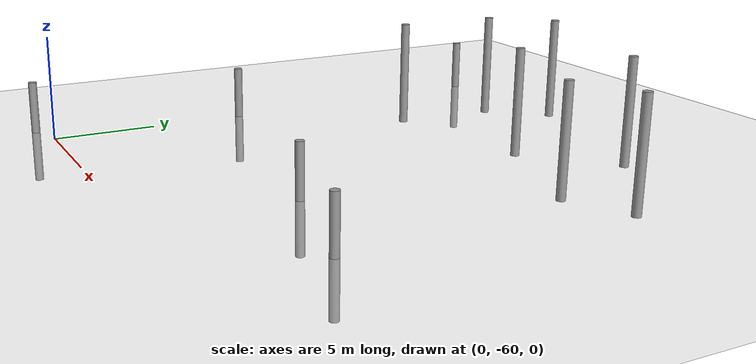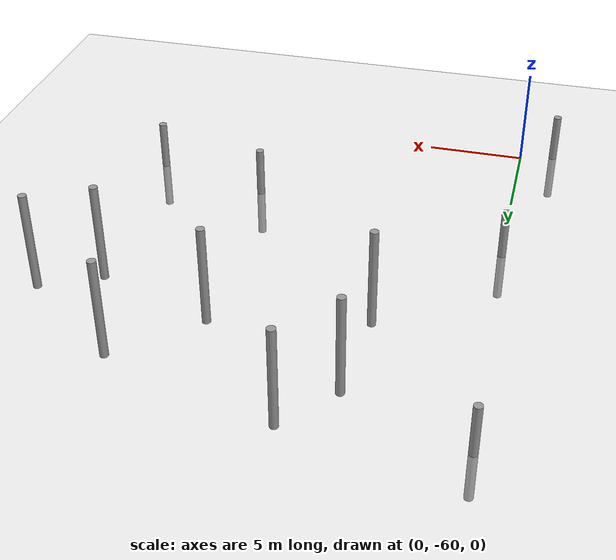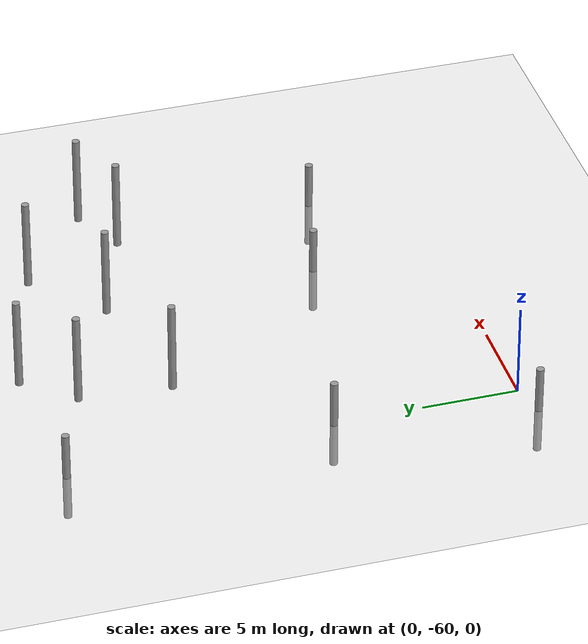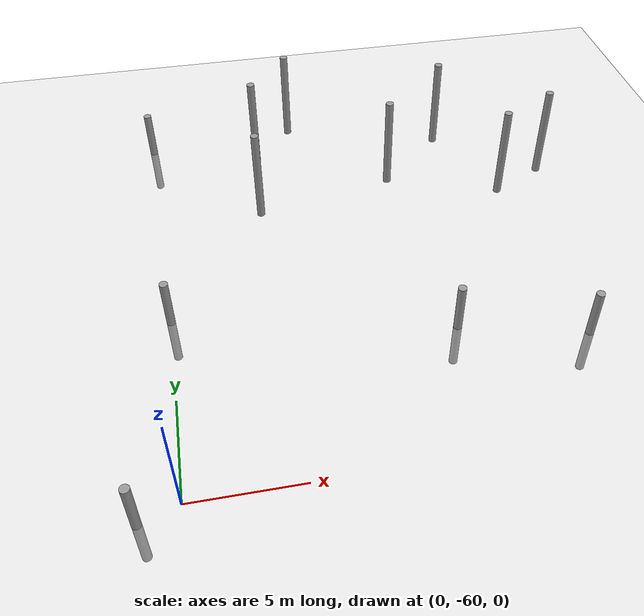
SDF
<sdf version="1.6">
 <world name="default">
  <model name="ground_plane">
   <static>1</static>
   <link name="link">
    <collision name="collision">
     <geometry><plane><normal>0 0 1</normal><size>100 100</size></plane></geometry>
     <surface><friction><ode><mu>100</mu><mu2>50</mu2></ode></friction></surface>
    </collision>
    <visual name="visual">
     <cast_shadows>0</cast_shadows>
     <geometry><plane><normal>0 0 1</normal><size>100 100</size></plane></geometry>
     <material>
      <script><uri>file://media/materials/scripts/gazebo.material</uri><name>Gazebo/Grey</name></script>
     </material>
    </visual>
   </link>
  </model>
  <model name="empty_pillars_8">
   <model name="empty_pillar_clone_54">
    <link name="link">
     <inertial>
      <mass>1</mass>
      <inertia><ixx>0.145833</ixx><ixy>0</ixy><ixz>0</ixz><iyy>0.145833</iyy><iyz>0</iyz><izz>0.125</izz></inertia>
     </inertial>
     <visual name="visual">
      <geometry><cylinder><radius>0.2</radius><length>5</length></cylinder></geometry>
      <material>
       <script><name>Gazebo/Grey</name><uri>file://media/materials/scripts/gazebo.material</uri></script>
       <shader type="vertex"><normal_map>__default__</normal_map></shader>
       <ambient>0.3 0.3 0.3 1</ambient>
       <diffuse>0.7 0.7 0.7 1</diffuse>
       <specular>0.01 0.01 0.01 1</specular>
       <emissive>0 0 0 1</emissive>
      </material>
     </visual>
     <collision name="collision">
      <geometry><cylinder><radius>0.05</radius><length>5</length></cylinder></geometry>
      <surface>
       <friction>
        <ode><mu>1</mu><mu2>1</mu2><fdir1>0 0 0</fdir1><slip1>0</slip1><slip2>0</slip2></ode>
        <torsional>
         <coefficient>1</coefficient>
         <patch_radius>0</patch_radius>
         <surface_radius>0</surface_radius>
         <use_patch_radius>1</use_patch_radius>
         <ode><slip>0</slip></ode>
        </torsional>
       </friction>
       <bounce><restitution_coefficient>0</restitution_coefficient><threshold>1e+06</threshold></bounce>
       <contact>
        <collide_without_contact>0</collide_without_contact>
        <collide_without_contact_bitmask>1</collide_without_contact_bitmask>
        <collide_bitmask>1</collide_bitmask>
        <ode>
         <soft_cfm>0</soft_cfm>
         <soft_erp>0.2</soft_erp>
         <kp>1e+13</kp>
         <kd>1</kd>
         <max_vel>0.01</max_vel>
         <min_depth>0</min_depth>
        </ode>
        <bullet>
         <split_impulse>1</split_impulse>
         <split_impulse_penetration_threshold>-0.01</split_impulse_penetration_threshold>
         <soft_cfm>0</soft_cfm>
         <soft_erp>0.2</soft_erp>
         <kp>1e+13</kp>
         <kd>1</kd>
        </bullet>
       </contact>
      </surface>
     </collision>
    </link>
    <static>0</static>
    <pose>24.557 -15.8784 0 0 -0 0</pose>
   </model>
   <static>0</static>
   <pose>-25.0415 -20.6705 0 0 -0 0</pose>
  </model>
  <model name="empty_pillars_9">
   <model name="empty_pillar_clone_12">
    <link name="link">
     <inertial>
      <mass>1</mass>
      <inertia><ixx>0.145833</ixx><ixy>0</ixy><ixz>0</ixz><iyy>0.145833</iyy><iyz>0</iyz><izz>0.125</izz></inertia>
     </inertial>
     <visual name="visual">
      <geometry><cylinder><radius>0.2</radius><length>5</length></cylinder></geometry>
      <material>
       <script><name>Gazebo/Grey</name><uri>file://media/materials/scripts/gazebo.material</uri></script>
       <shader type="vertex"><normal_map>__default__</normal_map></shader>
       <ambient>0.3 0.3 0.3 1</ambient>
       <diffuse>0.7 0.7 0.7 1</diffuse>
       <specular>0.01 0.01 0.01 1</specular>
       <emissive>0 0 0 1</emissive>
      </material>
     </visual>
     <collision name="collision">
      <geometry><cylinder><radius>0.05</radius><length>5</length></cylinder></geometry>
      <surface>
       <friction>
        <ode><mu>1</mu><mu2>1</mu2><fdir1>0 0 0</fdir1><slip1>0</slip1><slip2>0</slip2></ode>
        <torsional>
         <coefficient>1</coefficient>
         <patch_radius>0</patch_radius>
         <surface_radius>0</surface_radius>
         <use_patch_radius>1</use_patch_radius>
         <ode><slip>0</slip></ode>
        </torsional>
       </friction>
       <bounce><restitution_coefficient>0</restitution_coefficient><threshold>1e+06</threshold></bounce>
       <contact>
        <collide_without_contact>0</collide_without_contact>
        <collide_without_contact_bitmask>1</collide_without_contact_bitmask>
        <collide_bitmask>1</collide_bitmask>
        <ode>
         <soft_cfm>0</soft_cfm>
         <soft_erp>0.2</soft_erp>
         <kp>1e+13</kp>
         <kd>1</kd>
         <max_vel>0.01</max_vel>
         <min_depth>0</min_depth>
        </ode>
        <bullet>
         <split_impulse>1</split_impulse>
         <split_impulse_penetration_threshold>-0.01</split_impulse_penetration_threshold>
         <soft_cfm>0</soft_cfm>
         <soft_erp>0.2</soft_erp>
         <kp>1e+13</kp>
         <kd>1</kd>
        </bullet>
       </contact>
      </surface>
     </collision>
    </link>
    <static>0</static>
    <pose>-4.01464 -20.8403 0 0 -0 0</pose>
   </model>
   <model name="empty_pillar_clone_35">
    <link name="link">
     <inertial>
      <mass>1</mass>
      <inertia><ixx>0.145833</ixx><ixy>0</ixy><ixz>0</ixz><iyy>0.145833</iyy><iyz>0</iyz><izz>0.125</izz></inertia>
     </inertial>
     <visual name="visual">
      <geometry><cylinder><radius>0.2</radius><length>5</length></cylinder></geometry>
      <material>
       <script><name>Gazebo/Grey</name><uri>file://media/materials/scripts/gazebo.material</uri></script>
       <shader type="vertex"><normal_map>__default__</normal_map></shader>
       <ambient>0.3 0.3 0.3 1</ambient>
       <diffuse>0.7 0.7 0.7 1</diffuse>
       <specular>0.01 0.01 0.01 1</specular>
       <emissive>0 0 0 1</emissive>
      </material>
     </visual>
     <collision name="collision">
      <geometry><cylinder><radius>0.05</radius><length>5</length></cylinder></geometry>
      <surface>
       <friction>
        <ode><mu>1</mu><mu2>1</mu2><fdir1>0 0 0</fdir1><slip1>0</slip1><slip2>0</slip2></ode>
        <torsional>
         <coefficient>1</coefficient>
         <patch_radius>0</patch_radius>
         <surface_radius>0</surface_radius>
         <use_patch_radius>1</use_patch_radius>
         <ode><slip>0</slip></ode>
        </torsional>
       </friction>
       <bounce><restitution_coefficient>0</restitution_coefficient><threshold>1e+06</threshold></bounce>
       <contact>
        <collide_without_contact>0</collide_without_contact>
        <collide_without_contact_bitmask>1</collide_without_contact_bitmask>
        <collide_bitmask>1</collide_bitmask>
        <ode>
         <soft_cfm>0</soft_cfm>
         <soft_erp>0.2</soft_erp>
         <kp>1e+13</kp>
         <kd>1</kd>
         <max_vel>0.01</max_vel>
         <min_depth>0</min_depth>
        </ode>
        <bullet>
         <split_impulse>1</split_impulse>
         <split_impulse_penetration_threshold>-0.01</split_impulse_penetration_threshold>
         <soft_cfm>0</soft_cfm>
         <soft_erp>0.2</soft_erp>
         <kp>1e+13</kp>
         <kd>1</kd>
        </bullet>
       </contact>
      </surface>
     </collision>
    </link>
    <static>0</static>
    <pose>-19.4431 -17.0281 0 0 -0 0</pose>
   </model>
   <model name="empty_pillar_clone_40">
    <link name="link">
     <inertial>
      <mass>1</mass>
      <inertia><ixx>0.145833</ixx><ixy>0</ixy><ixz>0</ixz><iyy>0.145833</iyy><iyz>0</iyz><izz>0.125</izz></inertia>
     </inertial>
     <visual name="visual">
      <geometry><cylinder><radius>0.2</radius><length>5</length></cylinder></geometry>
      <material>
       <script><name>Gazebo/Grey</name><uri>file://media/materials/scripts/gazebo.material</uri></script>
       <shader type="vertex"><normal_map>__default__</normal_map></shader>
       <ambient>0.3 0.3 0.3 1</ambient>
       <diffuse>0.7 0.7 0.7 1</diffuse>
       <specular>0.01 0.01 0.01 1</specular>
       <emissive>0 0 0 1</emissive>
      </material>
     </visual>
     <collision name="collision">
      <geometry><cylinder><radius>0.05</radius><length>5</length></cylinder></geometry>
      <surface>
       <friction>
        <ode><mu>1</mu><mu2>1</mu2><fdir1>0 0 0</fdir1><slip1>0</slip1><slip2>0</slip2></ode>
        <torsional>
         <coefficient>1</coefficient>
         <patch_radius>0</patch_radius>
         <surface_radius>0</surface_radius>
         <use_patch_radius>1</use_patch_radius>
         <ode><slip>0</slip></ode>
        </torsional>
       </friction>
       <bounce><restitution_coefficient>0</restitution_coefficient><threshold>1e+06</threshold></bounce>
       <contact>
        <collide_without_contact>0</collide_without_contact>
        <collide_without_contact_bitmask>1</collide_without_contact_bitmask>
        <collide_bitmask>1</collide_bitmask>
        <ode>
         <soft_cfm>0</soft_cfm>
         <soft_erp>0.2</soft_erp>
         <kp>1e+13</kp>
         <kd>1</kd>
         <max_vel>0.01</max_vel>
         <min_depth>0</min_depth>
        </ode>
        <bullet>
         <split_impulse>1</split_impulse>
         <split_impulse_penetration_threshold>-0.01</split_impulse_penetration_threshold>
         <soft_cfm>0</soft_cfm>
         <soft_erp>0.2</soft_erp>
         <kp>1e+13</kp>
         <kd>1</kd>
        </bullet>
       </contact>
      </surface>
     </collision>
    </link>
    <static>0</static>
    <pose>-17.318 -14.4851 0 0 -0 0</pose>
   </model>
   <model name="empty_pillar_clone_42">
    <link name="link">
     <inertial>
      <mass>1</mass>
      <inertia><ixx>0.145833</ixx><ixy>0</ixy><ixz>0</ixz><iyy>0.145833</iyy><iyz>0</iyz><izz>0.125</izz></inertia>
     </inertial>
     <visual name="visual">
      <geometry><cylinder><radius>0.2</radius><length>5</length></cylinder></geometry>
      <material>
       <script><name>Gazebo/Grey</name><uri>file://media/materials/scripts/gazebo.material</uri></script>
       <shader type="vertex"><normal_map>__default__</normal_map></shader>
       <ambient>0.3 0.3 0.3 1</ambient>
       <diffuse>0.7 0.7 0.7 1</diffuse>
       <specular>0.01 0.01 0.01 1</specular>
       <emissive>0 0 0 1</emissive>
      </material>
     </visual>
     <collision name="collision">
      <geometry><cylinder><radius>0.05</radius><length>5</length></cylinder></geometry>
      <surface>
       <friction>
        <ode><mu>1</mu><mu2>1</mu2><fdir1>0 0 0</fdir1><slip1>0</slip1><slip2>0</slip2></ode>
        <torsional>
         <coefficient>1</coefficient>
         <patch_radius>0</patch_radius>
         <surface_radius>0</surface_radius>
         <use_patch_radius>1</use_patch_radius>
         <ode><slip>0</slip></ode>
        </torsional>
       </friction>
       <bounce><restitution_coefficient>0</restitution_coefficient><threshold>1e+06</threshold></bounce>
       <contact>
        <collide_without_contact>0</collide_without_contact>
        <collide_without_contact_bitmask>1</collide_without_contact_bitmask>
        <collide_bitmask>1</collide_bitmask>
        <ode>
         <soft_cfm>0</soft_cfm>
         <soft_erp>0.2</soft_erp>
         <kp>1e+13</kp>
         <kd>1</kd>
         <max_vel>0.01</max_vel>
         <min_depth>0</min_depth>
        </ode>
        <bullet>
         <split_impulse>1</split_impulse>
         <split_impulse_penetration_threshold>-0.01</split_impulse_penetration_threshold>
         <soft_cfm>0</soft_cfm>
         <soft_erp>0.2</soft_erp>
         <kp>1e+13</kp>
         <kd>1</kd>
        </bullet>
       </contact>
      </surface>
     </collision>
    </link>
    <static>0</static>
    <pose>-12.5409 -20.2416 0 0 -0 0</pose>
   </model>
   <model name="empty_pillar_clone_43">
    <link name="link">
     <inertial>
      <mass>1</mass>
      <inertia><ixx>0.145833</ixx><ixy>0</ixy><ixz>0</ixz><iyy>0.145833</iyy><iyz>0</iyz><izz>0.125</izz></inertia>
     </inertial>
     <visual name="visual">
      <geometry><cylinder><radius>0.2</radius><length>5</length></cylinder></geometry>
      <material>
       <script><name>Gazebo/Grey</name><uri>file://media/materials/scripts/gazebo.material</uri></script>
       <shader type="vertex"><normal_map>__default__</normal_map></shader>
       <ambient>0.3 0.3 0.3 1</ambient>
       <diffuse>0.7 0.7 0.7 1</diffuse>
       <specular>0.01 0.01 0.01 1</specular>
       <emissive>0 0 0 1</emissive>
      </material>
     </visual>
     <collision name="collision">
      <geometry><cylinder><radius>0.05</radius><length>5</length></cylinder></geometry>
      <surface>
       <friction>
        <ode><mu>1</mu><mu2>1</mu2><fdir1>0 0 0</fdir1><slip1>0</slip1><slip2>0</slip2></ode>
        <torsional>
         <coefficient>1</coefficient>
         <patch_radius>0</patch_radius>
         <surface_radius>0</surface_radius>
         <use_patch_radius>1</use_patch_radius>
         <ode><slip>0</slip></ode>
        </torsional>
       </friction>
       <bounce><restitution_coefficient>0</restitution_coefficient><threshold>1e+06</threshold></bounce>
       <contact>
        <collide_without_contact>0</collide_without_contact>
        <collide_without_contact_bitmask>1</collide_without_contact_bitmask>
        <collide_bitmask>1</collide_bitmask>
        <ode>
         <soft_cfm>0</soft_cfm>
         <soft_erp>0.2</soft_erp>
         <kp>1e+13</kp>
         <kd>1</kd>
         <max_vel>0.01</max_vel>
         <min_depth>0</min_depth>
        </ode>
        <bullet>
         <split_impulse>1</split_impulse>
         <split_impulse_penetration_threshold>-0.01</split_impulse_penetration_threshold>
         <soft_cfm>0</soft_cfm>
         <soft_erp>0.2</soft_erp>
         <kp>1e+13</kp>
         <kd>1</kd>
        </bullet>
       </contact>
      </surface>
     </collision>
    </link>
    <static>0</static>
    <pose>-19.7613 -21.8307 0 0 -0 0</pose>
   </model>
   <model name="empty_pillar_clone_44">
    <link name="link">
     <inertial>
      <mass>1</mass>
      <inertia><ixx>0.145833</ixx><ixy>0</ixy><ixz>0</ixz><iyy>0.145833</iyy><iyz>0</iyz><izz>0.125</izz></inertia>
     </inertial>
     <visual name="visual">
      <geometry><cylinder><radius>0.2</radius><length>5</length></cylinder></geometry>
      <material>
       <script><name>Gazebo/Grey</name><uri>file://media/materials/scripts/gazebo.material</uri></script>
       <shader type="vertex"><normal_map>__default__</normal_map></shader>
       <ambient>0.3 0.3 0.3 1</ambient>
       <diffuse>0.7 0.7 0.7 1</diffuse>
       <specular>0.01 0.01 0.01 1</specular>
       <emissive>0 0 0 1</emissive>
      </material>
     </visual>
     <collision name="collision">
      <geometry><cylinder><radius>0.05</radius><length>5</length></cylinder></geometry>
      <surface>
       <friction>
        <ode><mu>1</mu><mu2>1</mu2><fdir1>0 0 0</fdir1><slip1>0</slip1><slip2>0</slip2></ode>
        <torsional>
         <coefficient>1</coefficient>
         <patch_radius>0</patch_radius>
         <surface_radius>0</surface_radius>
         <use_patch_radius>1</use_patch_radius>
         <ode><slip>0</slip></ode>
        </torsional>
       </friction>
       <bounce><restitution_coefficient>0</restitution_coefficient><threshold>1e+06</threshold></bounce>
       <contact>
        <collide_without_contact>0</collide_without_contact>
        <collide_without_contact_bitmask>1</collide_without_contact_bitmask>
        <collide_bitmask>1</collide_bitmask>
        <ode>
         <soft_cfm>0</soft_cfm>
         <soft_erp>0.2</soft_erp>
         <kp>1e+13</kp>
         <kd>1</kd>
         <max_vel>0.01</max_vel>
         <min_depth>0</min_depth>
        </ode>
        <bullet>
         <split_impulse>1</split_impulse>
         <split_impulse_penetration_threshold>-0.01</split_impulse_penetration_threshold>
         <soft_cfm>0</soft_cfm>
         <soft_erp>0.2</soft_erp>
         <kp>1e+13</kp>
         <kd>1</kd>
        </bullet>
       </contact>
      </surface>
     </collision>
    </link>
    <static>0</static>
    <pose>-6.78285 -22.2729 0 0 -0 0</pose>
   </model>
   <model name="empty_pillar_clone_45">
    <link name="link">
     <inertial>
      <mass>1</mass>
      <inertia><ixx>0.145833</ixx><ixy>0</ixy><ixz>0</ixz><iyy>0.145833</iyy><iyz>0</iyz><izz>0.125</izz></inertia>
     </inertial>
     <visual name="visual">
      <geometry><cylinder><radius>0.2</radius><length>5</length></cylinder></geometry>
      <material>
       <script><name>Gazebo/Grey</name><uri>file://media/materials/scripts/gazebo.material</uri></script>
       <shader type="vertex"><normal_map>__default__</normal_map></shader>
       <ambient>0.3 0.3 0.3 1</ambient>
       <diffuse>0.7 0.7 0.7 1</diffuse>
       <specular>0.01 0.01 0.01 1</specular>
       <emissive>0 0 0 1</emissive>
      </material>
     </visual>
     <collision name="collision">
      <geometry><cylinder><radius>0.05</radius><length>5</length></cylinder></geometry>
      <surface>
       <friction>
        <ode><mu>1</mu><mu2>1</mu2><fdir1>0 0 0</fdir1><slip1>0</slip1><slip2>0</slip2></ode>
        <torsional>
         <coefficient>1</coefficient>
         <patch_radius>0</patch_radius>
         <surface_radius>0</surface_radius>
         <use_patch_radius>1</use_patch_radius>
         <ode><slip>0</slip></ode>
        </torsional>
       </friction>
       <bounce><restitution_coefficient>0</restitution_coefficient><threshold>1e+06</threshold></bounce>
       <contact>
        <collide_without_contact>0</collide_without_contact>
        <collide_without_contact_bitmask>1</collide_without_contact_bitmask>
        <collide_bitmask>1</collide_bitmask>
        <ode>
         <soft_cfm>0</soft_cfm>
         <soft_erp>0.2</soft_erp>
         <kp>1e+13</kp>
         <kd>1</kd>
         <max_vel>0.01</max_vel>
         <min_depth>0</min_depth>
        </ode>
        <bullet>
         <split_impulse>1</split_impulse>
         <split_impulse_penetration_threshold>-0.01</split_impulse_penetration_threshold>
         <soft_cfm>0</soft_cfm>
         <soft_erp>0.2</soft_erp>
         <kp>1e+13</kp>
         <kd>1</kd>
        </bullet>
       </contact>
      </surface>
     </collision>
    </link>
    <static>0</static>
    <pose>-9.01076 -16.9307 0 0 -0 0</pose>
   </model>
   <static>0</static>
   <pose>24.7676 -21.5571 2.56943 0 -0 0</pose>
  </model>
  <model name="empty_pillars_12">
   <model name="empty_pillar_clone_30">
    <link name="link">
     <inertial>
      <mass>1</mass>
      <inertia><ixx>0.145833</ixx><ixy>0</ixy><ixz>0</ixz><iyy>0.145833</iyy><iyz>0</iyz><izz>0.125</izz></inertia>
     </inertial>
     <visual name="visual">
      <geometry><cylinder><radius>0.2</radius><length>5</length></cylinder></geometry>
      <material>
       <script><name>Gazebo/Grey</name><uri>file://media/materials/scripts/gazebo.material</uri></script>
       <shader type="vertex"><normal_map>__default__</normal_map></shader>
       <ambient>0.3 0.3 0.3 1</ambient>
       <diffuse>0.7 0.7 0.7 1</diffuse>
       <specular>0.01 0.01 0.01 1</specular>
       <emissive>0 0 0 1</emissive>
      </material>
     </visual>
     <collision name="collision">
      <geometry><cylinder><radius>0.05</radius><length>5</length></cylinder></geometry>
      <surface>
       <friction>
        <ode><mu>1</mu><mu2>1</mu2><fdir1>0 0 0</fdir1><slip1>0</slip1><slip2>0</slip2></ode>
        <torsional>
         <coefficient>1</coefficient>
         <patch_radius>0</patch_radius>
         <surface_radius>0</surface_radius>
         <use_patch_radius>1</use_patch_radius>
         <ode><slip>0</slip></ode>
        </torsional>
       </friction>
       <bounce><restitution_coefficient>0</restitution_coefficient><threshold>1e+06</threshold></bounce>
       <contact>
        <collide_without_contact>0</collide_without_contact>
        <collide_without_contact_bitmask>1</collide_without_contact_bitmask>
        <collide_bitmask>1</collide_bitmask>
        <ode>
         <soft_cfm>0</soft_cfm>
         <soft_erp>0.2</soft_erp>
         <kp>1e+13</kp>
         <kd>1</kd>
         <max_vel>0.01</max_vel>
         <min_depth>0</min_depth>
        </ode>
        <bullet>
         <split_impulse>1</split_impulse>
         <split_impulse_penetration_threshold>-0.01</split_impulse_penetration_threshold>
         <soft_cfm>0</soft_cfm>
         <soft_erp>0.2</soft_erp>
         <kp>1e+13</kp>
         <kd>1</kd>
        </bullet>
       </contact>
      </surface>
     </collision>
    </link>
    <static>0</static>
    <pose>23.752 19.2231 0 0 -0 0</pose>
   </model>
   <model name="empty_pillar_clone_31">
    <link name="link">
     <inertial>
      <mass>1</mass>
      <inertia><ixx>0.145833</ixx><ixy>0</ixy><ixz>0</ixz><iyy>0.145833</iyy><iyz>0</iyz><izz>0.125</izz></inertia>
     </inertial>
     <visual name="visual">
      <geometry><cylinder><radius>0.2</radius><length>5</length></cylinder></geometry>
      <material>
       <script><name>Gazebo/Grey</name><uri>file://media/materials/scripts/gazebo.material</uri></script>
       <shader type="vertex"><normal_map>__default__</normal_map></shader>
       <ambient>0.3 0.3 0.3 1</ambient>
       <diffuse>0.7 0.7 0.7 1</diffuse>
       <specular>0.01 0.01 0.01 1</specular>
       <emissive>0 0 0 1</emissive>
      </material>
     </visual>
     <collision name="collision">
      <geometry><cylinder><radius>0.05</radius><length>5</length></cylinder></geometry>
      <surface>
       <friction>
        <ode><mu>1</mu><mu2>1</mu2><fdir1>0 0 0</fdir1><slip1>0</slip1><slip2>0</slip2></ode>
        <torsional>
         <coefficient>1</coefficient>
         <patch_radius>0</patch_radius>
         <surface_radius>0</surface_radius>
         <use_patch_radius>1</use_patch_radius>
         <ode><slip>0</slip></ode>
        </torsional>
       </friction>
       <bounce><restitution_coefficient>0</restitution_coefficient><threshold>1e+06</threshold></bounce>
       <contact>
        <collide_without_contact>0</collide_without_contact>
        <collide_without_contact_bitmask>1</collide_without_contact_bitmask>
        <collide_bitmask>1</collide_bitmask>
        <ode>
         <soft_cfm>0</soft_cfm>
         <soft_erp>0.2</soft_erp>
         <kp>1e+13</kp>
         <kd>1</kd>
         <max_vel>0.01</max_vel>
         <min_depth>0</min_depth>
        </ode>
        <bullet>
         <split_impulse>1</split_impulse>
         <split_impulse_penetration_threshold>-0.01</split_impulse_penetration_threshold>
         <soft_cfm>0</soft_cfm>
         <soft_erp>0.2</soft_erp>
         <kp>1e+13</kp>
         <kd>1</kd>
        </bullet>
       </contact>
      </surface>
     </collision>
    </link>
    <static>0</static>
    <pose>22.0722 9.04182 0 0 -0 0</pose>
   </model>
   <static>0</static>
   <pose>-23.7837 -69.5726 0 0 -0 0</pose>
  </model>
  <model name="empty_pillar_0">
   <link name="link">
    <inertial>
     <mass>1</mass>
     <inertia><ixx>0.145833</ixx><ixy>0</ixy><ixz>0</ixz><iyy>0.145833</iyy><iyz>0</iyz><izz>0.125</izz></inertia>
    </inertial>
    <visual name="visual">
     <geometry><cylinder><radius>0.2</radius><length>5</length></cylinder></geometry>
     <material>
      <script><name>Gazebo/Grey</name><uri>file://media/materials/scripts/gazebo.material</uri></script>
      <shader type="vertex"><normal_map>__default__</normal_map></shader>
      <ambient>0.3 0.3 0.3 1</ambient>
      <diffuse>0.7 0.7 0.7 1</diffuse>
      <specular>0.01 0.01 0.01 1</specular>
      <emissive>0 0 0 1</emissive>
     </material>
    </visual>
    <collision name="collision">
     <geometry><cylinder><radius>0.05</radius><length>5</length></cylinder></geometry>
     <surface>
      <friction>
       <ode><mu>1</mu><mu2>1</mu2><fdir1>0 0 0</fdir1><slip1>0</slip1><slip2>0</slip2></ode>
       <torsional>
        <coefficient>1</coefficient>
        <patch_radius>0</patch_radius>
        <surface_radius>0</surface_radius>
        <use_patch_radius>1</use_patch_radius>
        <ode><slip>0</slip></ode>
       </torsional>
      </friction>
      <bounce><restitution_coefficient>0</restitution_coefficient><threshold>1e+06</threshold></bounce>
      <contact>
       <collide_without_contact>0</collide_without_contact>
       <collide_without_contact_bitmask>1</collide_without_contact_bitmask>
       <collide_bitmask>1</collide_bitmask>
       <ode>
        <soft_cfm>0</soft_cfm>
        <soft_erp>0.2</soft_erp>
        <kp>1e+13</kp>
        <kd>1</kd>
        <max_vel>0.01</max_vel>
        <min_depth>0</min_depth>
       </ode>
       <bullet>
        <split_impulse>1</split_impulse>
        <split_impulse_penetration_threshold>-0.01</split_impulse_penetration_threshold>
        <soft_cfm>0</soft_cfm>
        <soft_erp>0.2</soft_erp>
        <kp>1e+13</kp>
        <kd>1</kd>
       </bullet>
      </contact>
     </surface>
    </collision>
   </link>
   <static>0</static>
   <pose>13.0023 -53.1088 0 0 -0 0</pose>
  </model>
  <model name="empty_pillar_0_clone">
   <link name="link">
    <inertial>
     <mass>1</mass>
     <inertia><ixx>0.145833</ixx><ixy>0</ixy><ixz>0</ixz><iyy>0.145833</iyy><iyz>0</iyz><izz>0.125</izz></inertia>
    </inertial>
    <visual name="visual">
     <geometry><cylinder><radius>0.2</radius><length>5</length></cylinder></geometry>
     <material>
      <script><name>Gazebo/Grey</name><uri>file://media/materials/scripts/gazebo.material</uri></script>
      <shader type="vertex"><normal_map>__default__</normal_map></shader>
      <ambient>0.3 0.3 0.3 1</ambient>
      <diffuse>0.7 0.7 0.7 1</diffuse>
      <specular>0.01 0.01 0.01 1</specular>
      <emissive>0 0 0 1</emissive>
     </material>
    </visual>
    <collision name="collision">
     <geometry><cylinder><radius>0.05</radius><length>5</length></cylinder></geometry>
     <surface>
      <friction>
       <ode><mu>1</mu><mu2>1</mu2><fdir1>0 0 0</fdir1><slip1>0</slip1><slip2>0</slip2></ode>
       <torsional>
        <coefficient>1</coefficient>
        <patch_radius>0</patch_radius>
        <surface_radius>0</surface_radius>
        <use_patch_radius>1</use_patch_radius>
        <ode><slip>0</slip></ode>
       </torsional>
      </friction>
      <bounce><restitution_coefficient>0</restitution_coefficient><threshold>1e+06</threshold></bounce>
      <contact>
       <collide_without_contact>0</collide_without_contact>
       <collide_without_contact_bitmask>1</collide_without_contact_bitmask>
       <collide_bitmask>1</collide_bitmask>
       <ode>
        <soft_cfm>0</soft_cfm>
        <soft_erp>0.2</soft_erp>
        <kp>1e+13</kp>
        <kd>1</kd>
        <max_vel>0.01</max_vel>
        <min_depth>0</min_depth>
       </ode>
       <bullet>
        <split_impulse>1</split_impulse>
        <split_impulse_penetration_threshold>-0.01</split_impulse_penetration_threshold>
        <soft_cfm>0</soft_cfm>
        <soft_erp>0.2</soft_erp>
        <kp>1e+13</kp>
        <kd>1</kd>
       </bullet>
      </contact>
     </surface>
    </collision>
   </link>
   <static>0</static>
   <pose>18.882 -54.5962 0 0 -0 0</pose>
  </model>
 </world>
</sdf>
